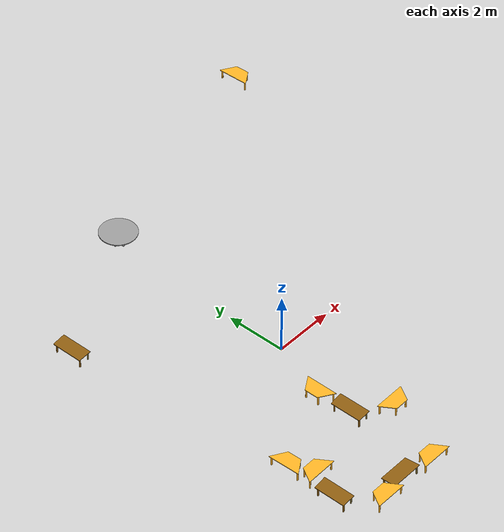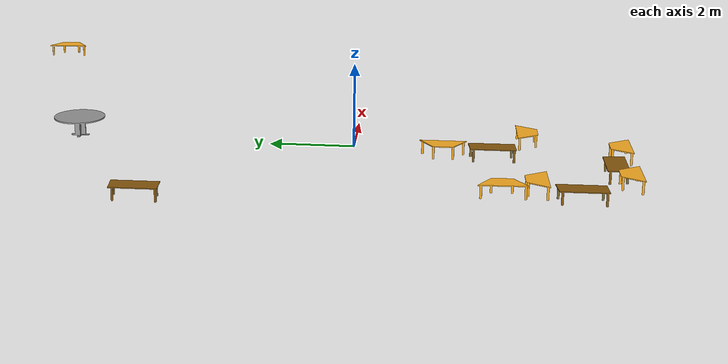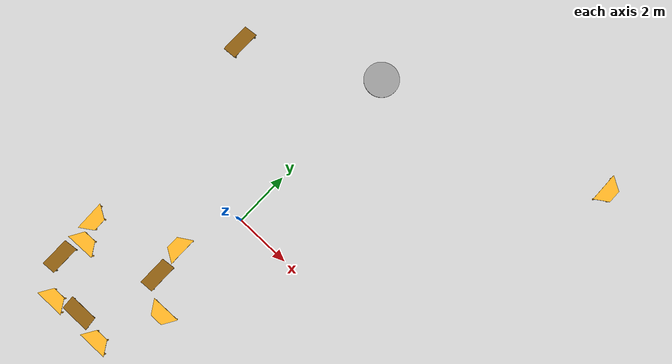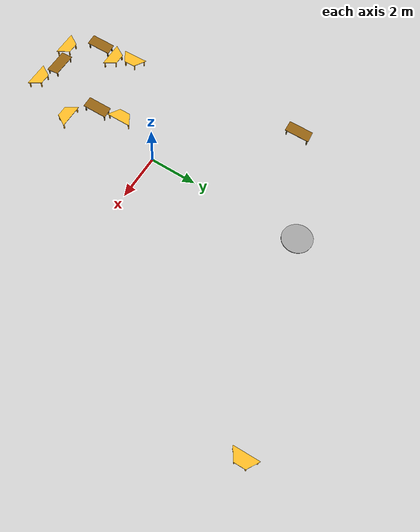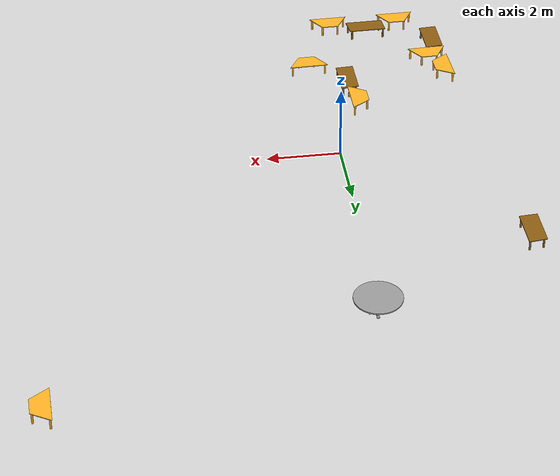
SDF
<?xml version='1.0'?>
<sdf version='1.6'>
  <model name='muebles'>
    <static> true </static>
    <link name='mesa_circular'>
      <pose frame=''>3.3 8.5 0 0 -0 0</pose>
      <visual name='visual'>
        <geometry>
          <mesh>
            <uri>model://muebles/meshes/mesacircular.dae</uri>
          </mesh>
        </geometry>
        <material>
          <lighting>1</lighting>
          <script>
            <uri>file://media/materials/scripts/gazebo.material</uri>
            <name>Gazebo/Grey</name>
          </script>
        </material>
      </visual>
      <collision name='collision'>
        <geometry>
          <mesh>
            <uri>model://muebles/meshes/mesacuadrada.dae</uri>
          </mesh>
        </geometry>
      </collision>
    </link>
    <link name='mesa_cuadrada_1'>
      <pose frame=''>-4.2 4.18832 0 0 -0 0</pose>
      <visual name='visual'>
        <geometry>
          <mesh>
            <uri>model://muebles/meshes/mesacuadrada.dae</uri>
          </mesh>
        </geometry>
      </visual>
      <collision name='collision'>
        <geometry>
          <mesh>
            <uri>model://muebles/meshes/mesacuadrada.dae</uri>
          </mesh>
        </geometry>
      </collision>
    </link>
    <link name='mesa_caudrada_2'>
      <pose frame=''>-0.7 -3.4 0 0 -0 0</pose>
      <visual name='visual'>
        <geometry>
          <mesh>
            <uri>model://muebles/meshes/mesacuadrada.dae</uri>
          </mesh>
        </geometry>
      </visual>
      <collision name='collision'>
        <geometry>
          <mesh>
            <uri>model://muebles/meshes/mesacuadrada.dae</uri>
          </mesh>
        </geometry>
      </collision>
    </link>
    <link name='mesa_caudrada_3'>
      <pose frame=''>-3.5 -5.2 0 0 -0 0</pose>
      <visual name='visual'>
        <geometry>
          <mesh>
            <uri>model://muebles/meshes/mesacuadrada.dae</uri>
          </mesh>
        </geometry>
      </visual>
      <collision name='collision'>
        <geometry>
          <mesh>
            <uri>model://muebles/meshes/mesacuadrada.dae</uri>
          </mesh>
        </geometry>
      </collision>
    </link>
    <link name='mesa_caudrada_4'>
      <pose frame=''>-1.91014 -5.94288 0 0 0 -1.56325</pose>
      <visual name='visual'>
        <geometry>
          <mesh>
            <uri>model://muebles/meshes/mesacuadrada.dae</uri>
          </mesh>
        </geometry>
      </visual>
      <collision name='collision'>
        <geometry>
          <mesh>
            <uri>model://muebles/meshes/mesacuadrada.dae</uri>
          </mesh>
        </geometry>
      </collision>
    </link>
    <link name='mesa_triangular'>
      <pose frame=''>-2.51014 -5.94288 0 0 0 -1.56325</pose>
      <visual name='visual'>
        <geometry>
          <mesh>
            <uri>model://muebles/meshes/mesatriangular.dae</uri>
          </mesh>
        </geometry>
      </visual>
      <collision name='collision'>
        <geometry>
          <mesh>
            <uri>model://muebles/meshes/mesatriangular.dae</uri>
          </mesh>
        </geometry>
      </collision>
    </link>
    <link name='mesa_triangular_1'>
      <pose frame=''>-1.05359 -1.94449 0 0 -0 0</pose>
      <visual name='visual'>
        <geometry>
          <mesh>
            <uri>model://muebles/meshes/mesatriangular.dae</uri>
          </mesh>
        </geometry>
      </visual>
      <collision name='collision'>
        <geometry>
          <mesh>
            <uri>model://muebles/meshes/mesatriangular.dae</uri>
          </mesh>
        </geometry>
      </collision>
    </link>
    <link name='mesa_triangular_2'>
      <pose frame=''>0.124565 -4.2384 0 0 -0 1.58594</pose>
      <visual name='visual'>
        <geometry>
          <mesh>
            <uri>model://muebles/meshes/mesatriangular.dae</uri>
          </mesh>
        </geometry>
      </visual>
      <collision name='collision'>
        <geometry>
          <mesh>
            <uri>model://muebles/meshes/mesatriangular.dae</uri>
          </mesh>
        </geometry>
      </collision>
    </link>
    <link name='mesa_triangular_3'>
      <pose frame=''>8.5 9 0 0 0 -3.11436</pose>
      <visual name='visual'>
        <geometry>
          <mesh>
            <uri>model://muebles/meshes/mesatriangular.dae</uri>
          </mesh>
        </geometry>
      </visual>
      <collision name='collision'>
        <geometry>
          <mesh>
            <uri>model://muebles/meshes/mesatriangular.dae</uri>
          </mesh>
        </geometry>
      </collision>
    </link>
    <link name='mesa_triangular_4'>
      <pose frame=''>-3.34568 -3.51712 0 0 0 -3.11436</pose>
      <visual name='visual'>
        <geometry>
          <mesh>
            <uri>model://muebles/meshes/mesatriangular.dae</uri>
          </mesh>
        </geometry>
      </visual>
      <collision name='collision'>
        <geometry>
          <mesh>
            <uri>model://muebles/meshes/mesatriangular.dae</uri>
          </mesh>
        </geometry>
      </collision>
    </link>
    <link name='mesa_tirangular_5'>
      <pose frame=''>-3.09544 -3.91124 0 0 0 -1.5477</pose>
      <visual name='visual'>
        <geometry>
          <mesh>
            <uri>model://muebles/meshes/mesatriangular.dae</uri>
          </mesh>
        </geometry>
      </visual>
      <collision name='collision'>
        <geometry>
          <mesh>
            <uri>model://muebles/meshes/mesacircular.dae</uri>
          </mesh>
        </geometry>
      </collision>
    </link>
    <link name='mesa_triangular_6'>
      <pose frame=''>-0.51014 -5.94288 0 0 0 -1.56325</pose>
      <visual name='visual'>
        <geometry>
          <mesh>
            <uri>model://muebles/meshes/mesatriangular.dae</uri>
          </mesh>
        </geometry>
      </visual>
      <collision name='collision'>
        <geometry>
          <mesh>
            <uri>model://muebles/meshes/mesatriangular.dae</uri>
          </mesh>
        </geometry>
      </collision>
    </link>
  </model>
</sdf>
